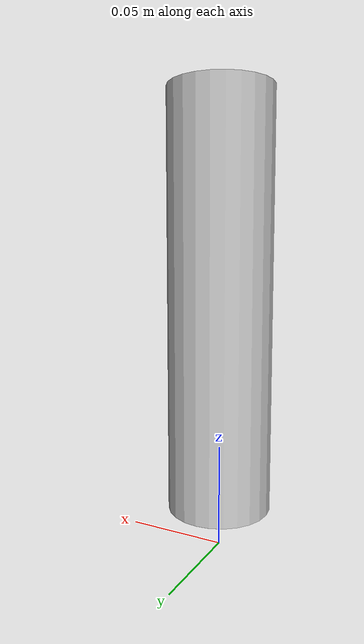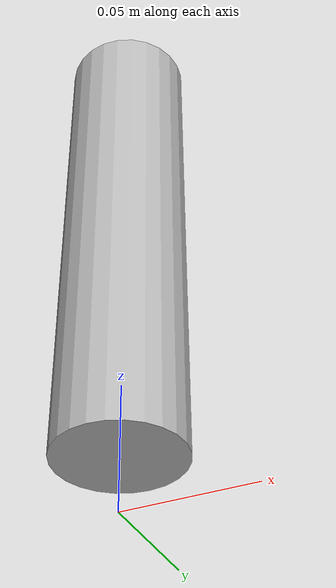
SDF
<sdf version="1.4">
  <model name="pringles2">
    <static>0</static>
    <link name="link">
      <inertial>
        <mass>0.01</mass>
        <inertia>
          <ixx>0.000000</ixx>
          <ixy>0.000000</ixy>
          <ixz>0.000000</ixz>
          <iyy>0.000000</iyy>
          <iyz>0.000000</iyz>
          <izz>0.000000</izz>
        </inertia>
      </inertial>
      <collision name="collision">
        <pose>0 0 0.12 3.1416 0 0</pose>
        <geometry>
          <cylinder>
            <radius>0.025</radius>
            <length>0.2</length>
          </cylinder>
        </geometry>
        <surface>
          <bounce />
          <friction>
            <ode>
              <mu>1000.0</mu>
              <mu2>1000.0</mu2>
            </ode>
          </friction>
          <contact>
            <ode />
          </contact>
        </surface>
      </collision>
      <visual name="visual">
        <pose>0 0 0.12 3.1416 0 0</pose>
        <geometry>
          <cylinder>
            <radius>0.025</radius>
            <length>0.2</length>
          </cylinder>
        </geometry>
        <material>
          <script>
	      <uri>model://pringles2/material/scripts</uri>
	      <uri>model://pringles2/material/textures</uri>
              <name>Custom/pringles2</name>
          </script>
        </material>
      </visual>
      <velocity_decay>
        <linear>0.000000</linear>
        <angular>0.000000</angular>
      </velocity_decay>
      <self_collide>0</self_collide>
      <kinematic>0</kinematic>
      <gravity>1</gravity>
    </link>
  </model>
</sdf>
